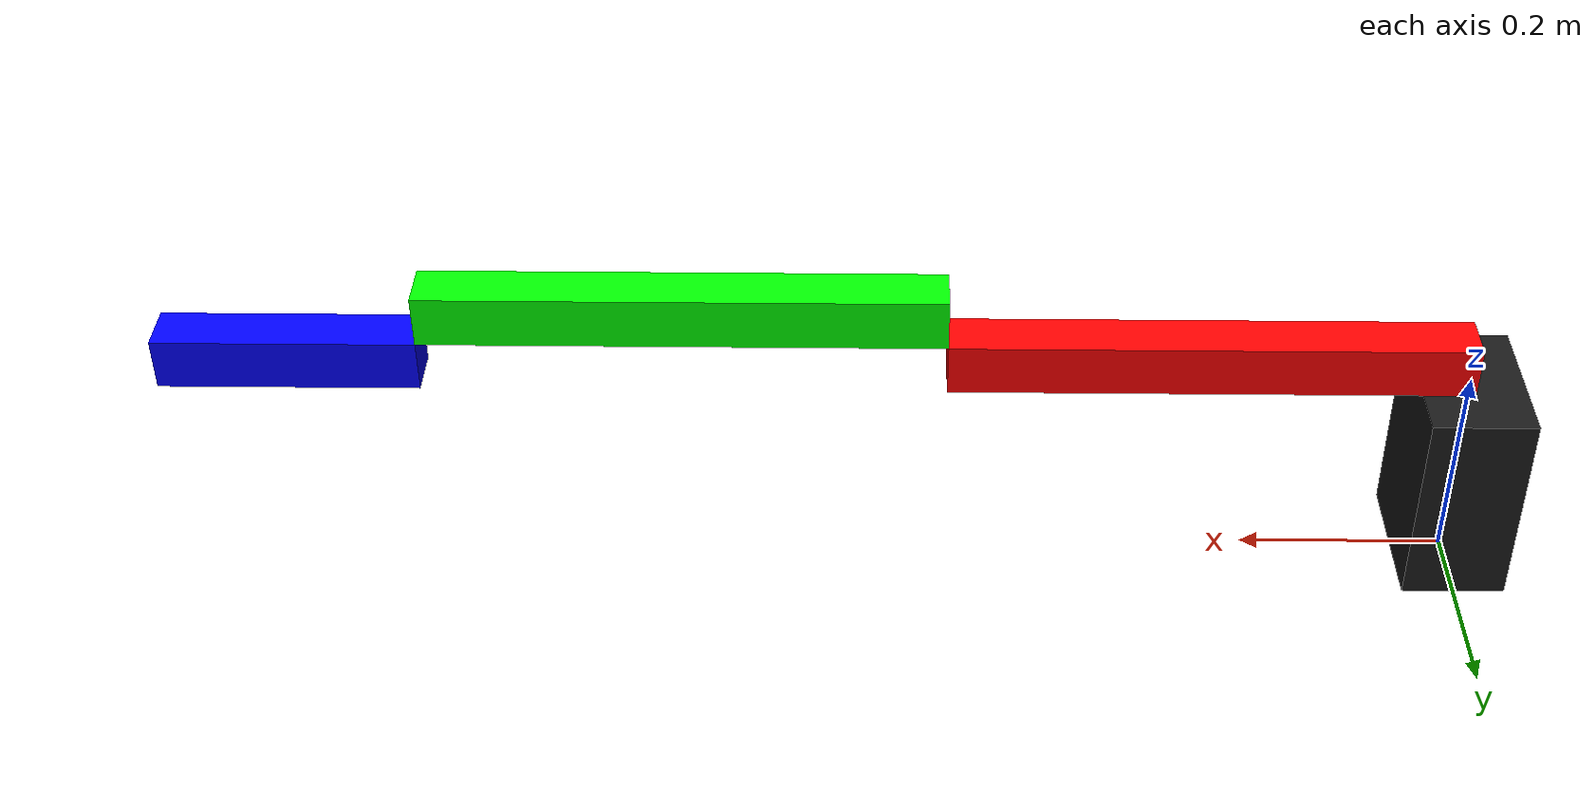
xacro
<?xml version="1.0" encoding="utf-8"?>
<robot name="robot_scara" xmlns:xacro="http://ros.org/wiki/xacro" >

    <link name="world">
    </link>

    <joint name="world_joint" type="fixed">
        <parent link="world"/>
        <child link="base_link"/>
        <origin xyz="0 0 0" rpy="0 0 0"/>
    </joint>

    <link name="base_link">
        <visual>
            <origin xyz="0.0 0.0 0.1" rpy="0 0 0" />
            <geometry>
                <box size="0.1 0.15 0.2" />
            </geometry>
            <material name="grey">
                <color rgba="0.1 0.1 0.1 1.0" />
            </material>
        </visual>
        <collision>
            <origin xyz="0.0 0.0 0.1" rpy="0 0 0" />
            <geometry>
                <box size="0.1 0.15 0.2" />
            </geometry>
        </collision>
        <inertial>
            <origin xyz="0 0 0" rpy="0 0 0"/>
            <mass value="10.0"/>
            <inertia ixx="1.0" ixy="0.0" ixz="0.0"
                iyy="1.0" iyz="0.0" izz="1.0"/>
        </inertial>
    </link>

    <link name="link_1">
        <visual>
            <origin xyz="0.25 0.0 0.0" rpy="0 0 0" />
            <geometry>
                <box size="0.5 0.05 0.05" />
            </geometry>
            <material name="red">
                <color rgba="1 0.0 0.0 1.0"/>
            </material>
        </visual>
        <collision>
            <origin xyz="0.25 0.0 0.0" rpy="0 0 0" />
            <geometry>
                <box size="0.5 0.05 0.05" />
            </geometry>
        </collision>
        <inertial>
            <origin xyz="0.25 0 0" rpy="0 0 0"/>
            <mass value="2.0"/>
            <inertia ixx="0.06" ixy="0.0" ixz="0.0"
                iyy="0.06" iyz="0.0" izz="0.1"/>
        </inertial>
    </link>

    <joint name="link_1_joint" type="revolute">
        <parent link="base_link"/>
        <child link="link_1"/>
        <axis xyz="0 0 1"/>
        <limit lower="-3.14159" upper="3.14159" velocity="5.0"
               effort="100.0"/>
        <origin xyz="0 0 0.225" rpy="0 0 0"/>
        <dynamics damping="0.1" friction="0.1"/>
    </joint>

    <link name="link_2">
        <visual>
            <origin xyz="0.25 0.0 0.0" rpy="0 0 0" />
            <geometry>
                <box size="0.5 0.05 0.05" />
            </geometry>
            <material name="green">
                <color rgba="0.0 1.0 0.0 1.0" />
            </material>
        </visual>
        <collision>
            <origin xyz="0.25 0.0 0.0" rpy="0 0 0" />
            <geometry>
                <box size="0.5 0.05 0.05" />
            </geometry>
        </collision>
        <inertial>
            <origin xyz="0.25 0 0" rpy="0 0 0"/>
            <mass value="1.5"/>
            <inertia ixx="0.05" ixy="0.0" ixz="0.0"
                iyy="0.05" iyz="0.0" izz="0.08"/>
        </inertial>
    </link>

    <joint name="link_2_joint" type="revolute">
        <parent link="link_1"/>
        <child link="link_2"/>
        <axis xyz="0 0 1"/>
        <limit lower="-3.14159" upper="3.14159" velocity="5.0"
               effort="100.0"/>
        <origin xyz="0.5 0 0.05" rpy="0 0 0"/>
        <dynamics damping="0.1" friction="0.1"/>
    </joint>

    <link name="link_3">
        <visual>
            <origin xyz="0.125 0.0 0.0" rpy="0 0 0" />
            <geometry>
                <box size="0.25 0.05 0.05" />
            </geometry>
            <material name="blue">
                <color rgba="0.0 0.0 1.0 1.0" />
            </material>
        </visual>
        <collision>
            <origin xyz="0.125 0.0 0.0" rpy="0 0 0" />
            <geometry>
                <box size="0.25 0.05 0.05" />
            </geometry>
        </collision>
        <inertial>
            <origin xyz="0.125 0 0" rpy="0 0 0"/>
            <mass value="0.8"/>
            <inertia ixx="0.02" ixy="0.0" ixz="0.0"
                iyy="0.02" iyz="0.0" izz="0.02"/>
        </inertial>
    </link>

    <joint name="link_3_joint" type="revolute">
        <parent link="link_2"/>
        <child link="link_3"/>
        <axis xyz="0 0 1"/>
        <limit lower="-3.14159" upper="3.14159" velocity="5.0"
               effort="100.0"/>
        <origin xyz="0.5 0 -0.05" rpy="0 0 0"/>
        <dynamics damping="0.1" friction="0.1"/>
    </joint>

    <link name="P">
    </link>

    <joint name="link_P_joint" type="fixed">
        <parent link="link_3"/>
        <child link="P"/>
        <origin xyz="0.25 0 0" rpy="0 0 0"/>
    </joint>

</robot>
